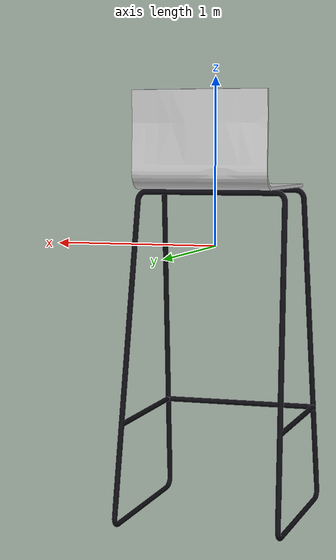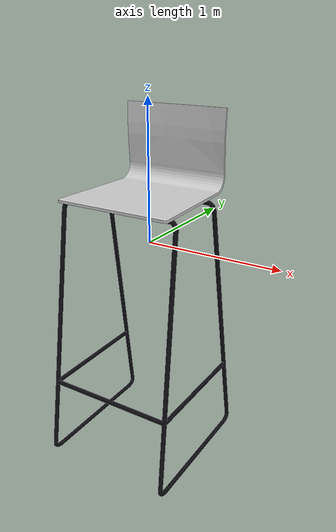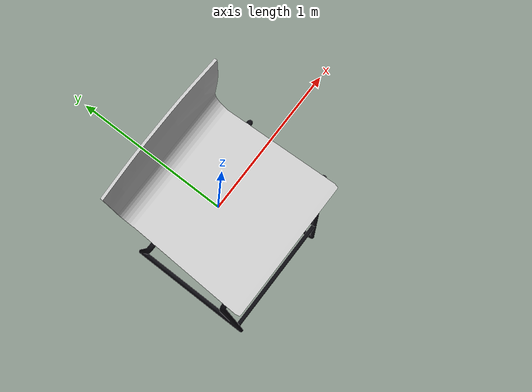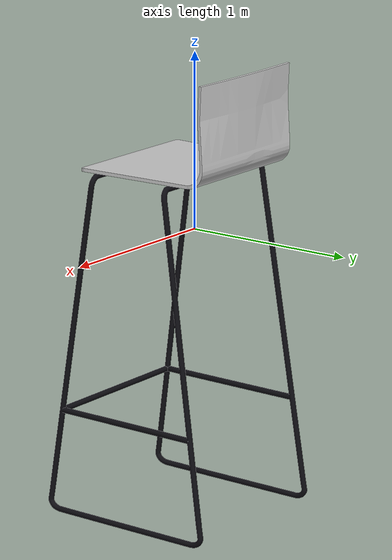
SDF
<?xml version='1.0'?>
<sdf version='1.5'>
    <model name="407_kitchen_chair">
        <pose>0 0 0 0 0 0</pose>
        <static>false</static>
        <link name='model_body'>
            <visual name="visual">
                <geometry>
                    <mesh>
                        <uri>model://rs_gazebo/meshes/ss_hq4/407_kitchen_chair/407_kitchen_chair_visual.dae</uri>
                        <scale>1 1 1</scale>
                    </mesh>
                </geometry>
            </visual>

            <collision name="collision">
                <geometry>
                    <mesh>
                        <uri>model://rs_gazebo/meshes/ss_hq4/407_kitchen_chair/407_kitchen_chair_collision.stl</uri>
                        <scale>1 1 1</scale>
                    </mesh>
                </geometry>
            </collision>

            <inertial>
                <pose> 0 0 0 0 0 0</pose>
                <inertia>
                    <ixx>1.43408333333</ixx>
                    <ixy>0</ixy>
                    <ixz>0</ixz>
                    <iyy>1.392</iyy>
                    <iyz>0</iyz>
                    <izz>0.426083333333</izz>
                </inertia>
                <mass>10.0</mass>
            </inertial>
        </link>
    </model>
</sdf>
